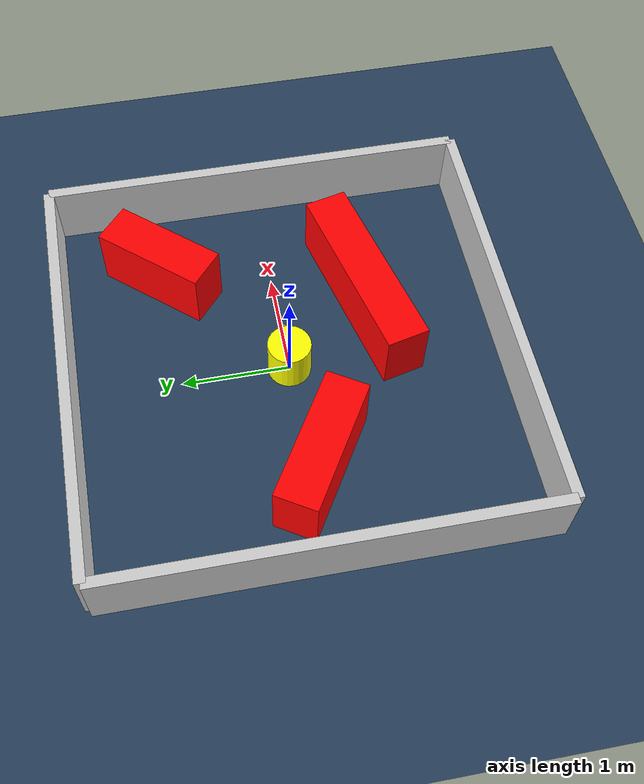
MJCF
<?xml version="1.0" ?>
<mujoco model="generated_environment">
  <option timestep="0.01" integrator="RK4" cone="elliptic"/>
  <default>
    <geom density="1"/>
  </default>
  <asset>
    <texture builtin="gradient" height="3072" rgb1="0.3 0.5 0.7" rgb2="0 0 0" type="skybox" width="512"/>
    <texture builtin="checker" height="300" mark="edge" markrgb="0.8 0.8 0.8" name="groundplane" rgb1="0.2 0.3 0.4" rgb2="0.1 0.2 0.3" type="2d" width="300"/>
    <material name="groundplane" reflectance="0.2" texrepeat="5 5" texture="groundplane" texuniform="true"/>
    <material name="robot" rgba="0.0 1.0 0.0 1"/>
  </asset>
  <worldbody>
    <light dir="0 0 -1" directional="true" pos="0 0 1.5"/>
    <geom condim="4" friction="1.0 0.005 0.001" material="groundplane" name="floor" size="0 0 0.05" type="plane"/>
    <body name="walls">
      <geom name="wall_1" condim="4" pos="-2.0 0.0 0.3" rgba="0.800000011920929 0.800000011920929 0.800000011920929 1.0" size="0.05 2.0 0.3" type="box"/>
      <geom name="wall_2" condim="4" pos="2.0 0.0 0.3" rgba="0.800000011920929 0.800000011920929 0.800000011920929 1.0" size="0.05 2.0 0.3" type="box"/>
      <geom name="wall_3" condim="4" pos="0.0 -2.0 0.3" rgba="0.800000011920929 0.800000011920929 0.800000011920929 1.0" size="2.0 0.05 0.3" type="box"/>
      <geom name="wall_4" condim="4" pos="0.0 2.0 0.3" rgba="0.800000011920929 0.800000011920929 0.800000011920929 1.0" size="2.0 0.05 0.3" type="box"/>
    </body>
    <body name="robot">
      <joint name="joint_x" type="slide" pos="0 0 0" axis="1 0 0"/>
      <joint name="joint_y" type="slide" pos="0 0 0" axis="0 1 0"/>
      <geom name="robot" type="sphere" pos="0.3 0.0 0.2" size="0.05" mass="5." friction="1.0 0.005 0.0001" condim="4" rgba="0.5 0.5 0.5 1.0"/>
      <site name="sensor_ball"/>
    </body>
    <body name="obstacle_movable_1">
      <geom name="obstacle_movable_1" condim="4" pos="0.0 0.0 0.2" euler="0 0 0.0" friction="1.0 0.005 0.001" rgba="1.0 1.0 0.0 1.0" size="0.2 0.2 0.0" type="cylinder" mass="0.1"/>
      <joint type="free"/>
    </body>
    <body name="obstacle_2_static">
      <geom name="obstacle_2_static" condim="4" pos="0.6059989856512071 -0.8218955623403823 0.3" euler="0 0 193.41132705910763" friction="1.0 0.005 0.001" rgba="1 0 0 1" size="0.884669365364309 0.2 0.3" type="box"/>
    </body>
    <body name="obstacle_3_static">
      <geom name="obstacle_3_static" condim="4" pos="-1.1004674119279299 -0.07945217858254994 0.3" euler="0 0 148.341001782035" friction="1.0 0.005 0.001" rgba="1 0 0 1" size="0.6327633562412124 0.2 0.3" type="box"/>
    </body>
    <body name="obstacle_4_static">
      <geom name="obstacle_4_static" condim="4" pos="1.1800206014090449 1.028999449752466 0.3" euler="0 0 49.21039514203662" friction="1.0 0.005 0.001" rgba="1 0 0 1" size="0.5412189116691504 0.2 0.3" type="box"/>
    </body>
  </worldbody>
  <actuator>
    <motor name="actuator_x" joint="joint_x" gear="1" ctrlrange="-1 1"/>
    <motor name="actuator_y" joint="joint_y" gear="1" ctrlrange="-1 1"/>
  </actuator>
</mujoco>
